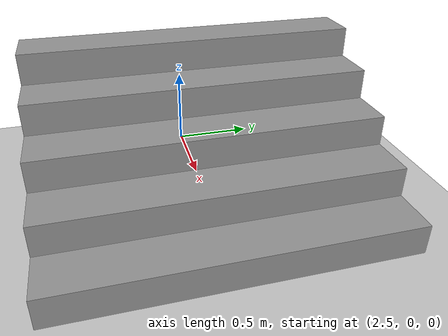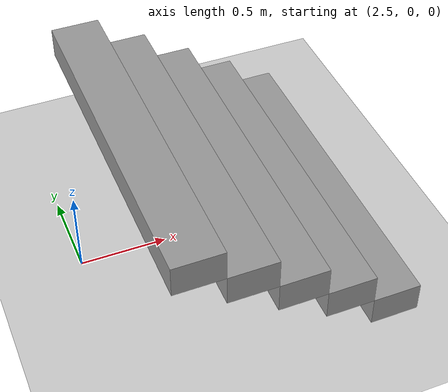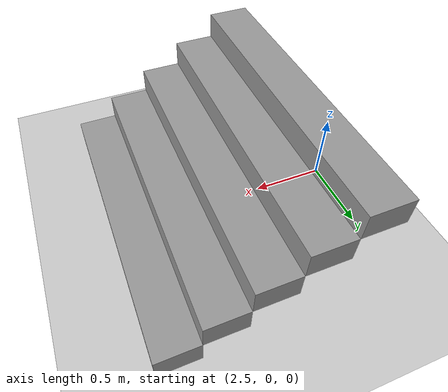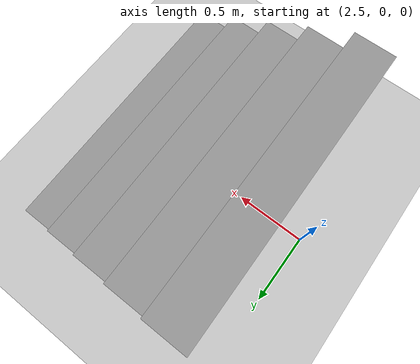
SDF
<sdf version="1.4">
 <world name="default">
  <physics type="ode">
   <gravity>0 0 -9.81</gravity>
   <max_step_size>0.001</max_step_size>
   <real_time_factor>1</real_time_factor>
  </physics>
  <include><uri>model://sun</uri></include>
  <include><uri>model://ground_plane</uri></include>
  <include>
   <name>industrialstair2</name>
   <uri>model://industrialstair2</uri>
   <pose>3.4 0 0 0 0 -1.57</pose>
  </include>
 </world>
</sdf>

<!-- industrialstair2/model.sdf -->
<sdf version='1.6'>
  <model name='industrialStairs'>
    <pose frame=''>2.21 -2.63 0 0 -0 0</pose>
    <link name='Stairs_1'>
      <visual name='Stairs_1_Visual_0'>
        <pose frame=''>0 0.56 0.09 0 -0 0</pose>
        <geometry>
          <box>
            <size>2 0.28 0.18</size>
          </box>
        </geometry>
        <material>
          <script>
            <uri>file://media/materials/scripts/gazebo.material</uri>
            <name>Gazebo/Grey</name>
          </script>
          <ambient>1 1 1 1</ambient>
        </material>
      </visual>
      <collision name='Stairs_1_Collision_0'>
        <geometry>
          <box>
            <size>2 0.28 0.18</size>
          </box>
        </geometry>
        <pose frame=''>0 0.56 0.09 0 -0 0</pose>
      </collision>
      <visual name='Stairs_1_Visual_1'>
        <pose frame=''>0 0.28 0.27 0 -0 0</pose>
        <geometry>
          <box>
            <size>2 0.28 0.18</size>
          </box>
        </geometry>
        <material>
          <script>
            <uri>file://media/materials/scripts/gazebo.material</uri>
            <name>Gazebo/Grey</name>
          </script>
          <ambient>1 1 1 1</ambient>
        </material>
      </visual>
      <collision name='Stairs_1_Collision_1'>
        <geometry>
          <box>
            <size>2 0.28 0.18</size>
          </box>
        </geometry>
        <pose frame=''>0 0.28 0.27 0 -0 0</pose>
      </collision>
      <visual name='Stairs_1_Visual_2'>
        <pose frame=''>0 0 0.45 0 -0 0</pose>
        <geometry>
          <box>
            <size>2 0.28 0.18</size>
          </box>
        </geometry>
        <material>
          <script>
            <uri>file://media/materials/scripts/gazebo.material</uri>
            <name>Gazebo/Grey</name>
          </script>
          <ambient>1 1 1 1</ambient>
        </material>
      </visual>
      <collision name='Stairs_1_Collision_2'>
        <geometry>
          <box>
            <size>2 0.28 0.18</size>
          </box>
        </geometry>
        <pose frame=''>0 0 0.45 0 -0 0</pose>
      </collision>
      <visual name='Stairs_1_Visual_3'>
        <pose frame=''>0 -0.28 0.63 0 -0 0</pose>
        <geometry>
          <box>
            <size>2 0.28 0.18</size>
          </box>
        </geometry>
        <material>
          <script>
            <uri>file://media/materials/scripts/gazebo.material</uri>
            <name>Gazebo/Grey</name>
          </script>
          <ambient>1 1 1 1</ambient>
        </material>
      </visual>
      <collision name='Stairs_1_Collision_3'>
        <geometry>
          <box>
            <size>2 0.28 0.18</size>
          </box>
        </geometry>
        <pose frame=''>0 -0.28 0.63 0 -0 0</pose>
      </collision>
      <visual name='Stairs_1_Visual_4'>
        <pose frame=''>0 -0.56 0.81 0 -0 0</pose>
        <geometry>
          <box>
            <size>2 0.28 0.18</size>
          </box>
        </geometry>
        <material>
          <script>
            <uri>file://media/materials/scripts/gazebo.material</uri>
            <name>Gazebo/Grey</name>
          </script>
          <ambient>1 1 1 1</ambient>
        </material>
      </visual>
      <collision name='Stairs_1_Collision_4'>
        <geometry>
          <box>
            <size>2 0.28 0.18</size>
          </box>
        </geometry>
        <pose frame=''>0 -0.56 0.81 0 -0 0</pose>
      </collision>
    </link>
    <static>1</static>
  </model>
</sdf>
